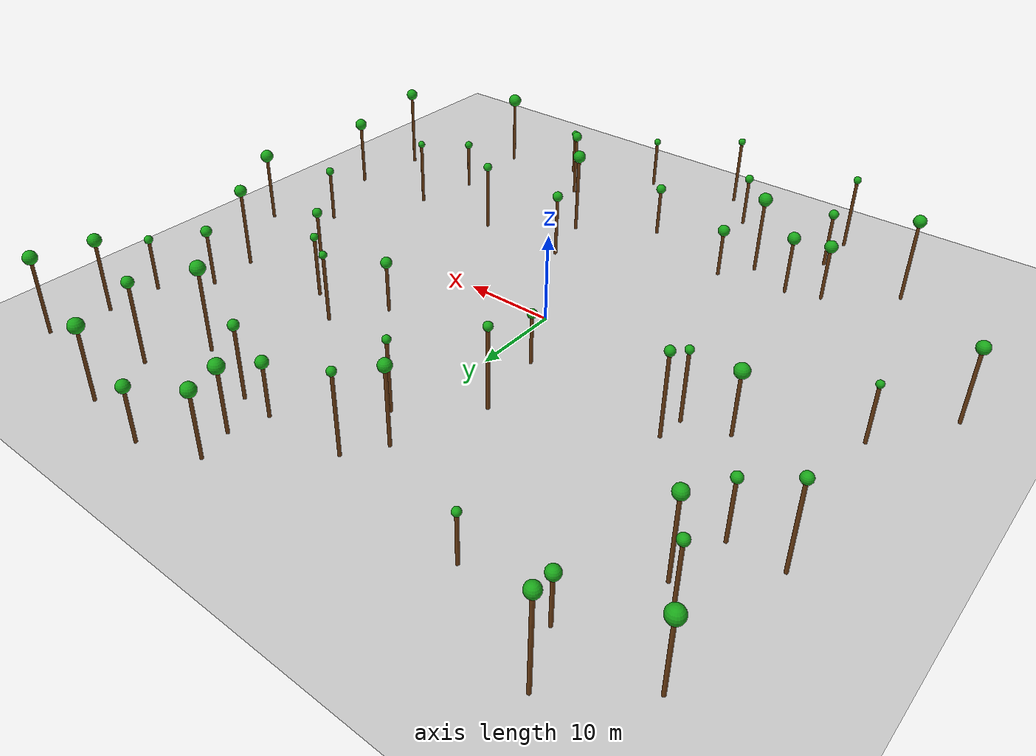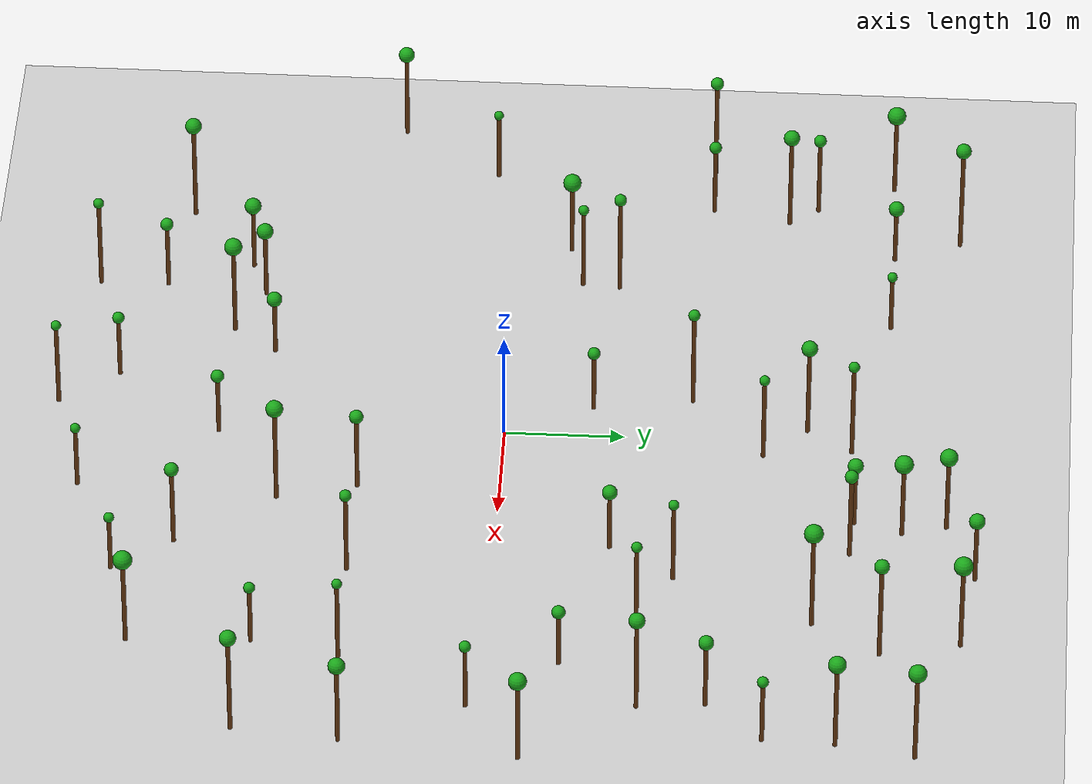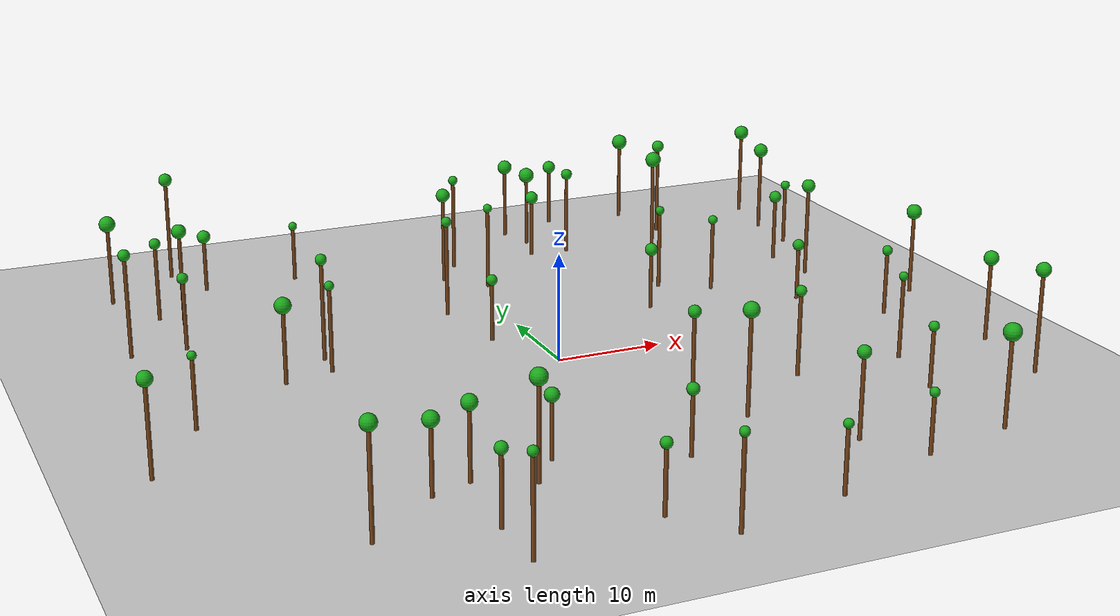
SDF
<sdf version="1.6">
 <world name="forest_world">
  <include><uri>model://sun</uri></include>
  <include><uri>model://ground_plane</uri></include>
  <model name="tree_0">
   <static>true</static>
   <link name="tree_link">
    <collision name="trunk_collision">
     <pose>-19.41 8.62 4.64 0 0 0</pose>
     <geometry><cylinder><radius>0.18</radius><length>9.27</length></cylinder></geometry>
    </collision>
    <visual name="trunk_visual">
     <pose>-19.41 8.62 4.64 0 0 0</pose>
     <geometry><cylinder><radius>0.18</radius><length>9.27</length></cylinder></geometry>
     <material><ambient>0.35 0.20 0.05 1</ambient><diffuse>0.45 0.25 0.08 1</diffuse></material>
    </visual>
    <visual name="leaf_visual">
     <pose>-19.41 8.62 9.53 0 0 0</pose>
     <geometry><sphere><radius>0.52</radius></sphere></geometry>
     <material><ambient>0.05 0.45 0.05 1</ambient><diffuse>0.10 0.65 0.10 1</diffuse></material>
    </visual>
   </link>
  </model>
  <model name="tree_1">
   <static>true</static>
   <link name="tree_link">
    <collision name="trunk_collision">
     <pose>-16.93 -21.17 3.21 0 0 0</pose>
     <geometry><cylinder><radius>0.18</radius><length>6.41</length></cylinder></geometry>
    </collision>
    <visual name="trunk_visual">
     <pose>-16.93 -21.17 3.21 0 0 0</pose>
     <geometry><cylinder><radius>0.18</radius><length>6.41</length></cylinder></geometry>
     <material><ambient>0.35 0.20 0.05 1</ambient><diffuse>0.45 0.25 0.08 1</diffuse></material>
    </visual>
    <visual name="leaf_visual">
     <pose>-16.93 -21.17 6.76 0 0 0</pose>
     <geometry><sphere><radius>0.69</radius></sphere></geometry>
     <material><ambient>0.05 0.45 0.05 1</ambient><diffuse>0.10 0.65 0.10 1</diffuse></material>
    </visual>
   </link>
  </model>
  <model name="tree_2">
   <static>true</static>
   <link name="tree_link">
    <collision name="trunk_collision">
     <pose>8.46 -34.79 2.87 0 0 0</pose>
     <geometry><cylinder><radius>0.18</radius><length>5.75</length></cylinder></geometry>
    </collision>
    <visual name="trunk_visual">
     <pose>8.46 -34.79 2.87 0 0 0</pose>
     <geometry><cylinder><radius>0.18</radius><length>5.75</length></cylinder></geometry>
     <material><ambient>0.35 0.20 0.05 1</ambient><diffuse>0.45 0.25 0.08 1</diffuse></material>
    </visual>
    <visual name="leaf_visual">
     <pose>8.46 -34.79 5.96 0 0 0</pose>
     <geometry><sphere><radius>0.42</radius></sphere></geometry>
     <material><ambient>0.05 0.45 0.05 1</ambient><diffuse>0.10 0.65 0.10 1</diffuse></material>
    </visual>
   </link>
  </model>
  <model name="tree_3">
   <static>true</static>
   <link name="tree_link">
    <collision name="trunk_collision">
     <pose>-5.80 -32.55 2.88 0 0 0</pose>
     <geometry><cylinder><radius>0.18</radius><length>5.76</length></cylinder></geometry>
    </collision>
    <visual name="trunk_visual">
     <pose>-5.80 -32.55 2.88 0 0 0</pose>
     <geometry><cylinder><radius>0.18</radius><length>5.76</length></cylinder></geometry>
     <material><ambient>0.35 0.20 0.05 1</ambient><diffuse>0.45 0.25 0.08 1</diffuse></material>
    </visual>
    <visual name="leaf_visual">
     <pose>-5.80 -32.55 6.01 0 0 0</pose>
     <geometry><sphere><radius>0.50</radius></sphere></geometry>
     <material><ambient>0.05 0.45 0.05 1</ambient><diffuse>0.10 0.65 0.10 1</diffuse></material>
    </visual>
   </link>
  </model>
  <model name="tree_4">
   <static>true</static>
   <link name="tree_link">
    <collision name="trunk_collision">
     <pose>27.48 -29.07 4.06 0 0 0</pose>
     <geometry><cylinder><radius>0.18</radius><length>8.13</length></cylinder></geometry>
    </collision>
    <visual name="trunk_visual">
     <pose>27.48 -29.07 4.06 0 0 0</pose>
     <geometry><cylinder><radius>0.18</radius><length>8.13</length></cylinder></geometry>
     <material><ambient>0.35 0.20 0.05 1</ambient><diffuse>0.45 0.25 0.08 1</diffuse></material>
    </visual>
    <visual name="leaf_visual">
     <pose>27.48 -29.07 8.52 0 0 0</pose>
     <geometry><sphere><radius>0.79</radius></sphere></geometry>
     <material><ambient>0.05 0.45 0.05 1</ambient><diffuse>0.10 0.65 0.10 1</diffuse></material>
    </visual>
   </link>
  </model>
  <model name="tree_5">
   <static>true</static>
   <link name="tree_link">
    <collision name="trunk_collision">
     <pose>-27.25 -28.04 4.60 0 0 0</pose>
     <geometry><cylinder><radius>0.18</radius><length>9.19</length></cylinder></geometry>
    </collision>
    <visual name="trunk_visual">
     <pose>-27.25 -28.04 4.60 0 0 0</pose>
     <geometry><cylinder><radius>0.18</radius><length>9.19</length></cylinder></geometry>
     <material><ambient>0.35 0.20 0.05 1</ambient><diffuse>0.45 0.25 0.08 1</diffuse></material>
    </visual>
    <visual name="leaf_visual">
     <pose>-27.25 -28.04 9.54 0 0 0</pose>
     <geometry><sphere><radius>0.69</radius></sphere></geometry>
     <material><ambient>0.05 0.45 0.05 1</ambient><diffuse>0.10 0.65 0.10 1</diffuse></material>
    </visual>
   </link>
  </model>
  <model name="tree_6">
   <static>true</static>
   <link name="tree_link">
    <collision name="trunk_collision">
     <pose>-24.26 4.32 3.45 0 0 0</pose>
     <geometry><cylinder><radius>0.18</radius><length>6.91</length></cylinder></geometry>
    </collision>
    <visual name="trunk_visual">
     <pose>-24.26 4.32 3.45 0 0 0</pose>
     <geometry><cylinder><radius>0.18</radius><length>6.91</length></cylinder></geometry>
     <material><ambient>0.35 0.20 0.05 1</ambient><diffuse>0.45 0.25 0.08 1</diffuse></material>
    </visual>
    <visual name="leaf_visual">
     <pose>-24.26 4.32 7.29 0 0 0</pose>
     <geometry><sphere><radius>0.76</radius></sphere></geometry>
     <material><ambient>0.05 0.45 0.05 1</ambient><diffuse>0.10 0.65 0.10 1</diffuse></material>
    </visual>
   </link>
  </model>
  <model name="tree_7">
   <static>true</static>
   <link name="tree_link">
    <collision name="trunk_collision">
     <pose>13.70 29.05 4.06 0 0 0</pose>
     <geometry><cylinder><radius>0.18</radius><length>8.11</length></cylinder></geometry>
    </collision>
    <visual name="trunk_visual">
     <pose>13.70 29.05 4.06 0 0 0</pose>
     <geometry><cylinder><radius>0.18</radius><length>8.11</length></cylinder></geometry>
     <material><ambient>0.35 0.20 0.05 1</ambient><diffuse>0.45 0.25 0.08 1</diffuse></material>
    </visual>
    <visual name="leaf_visual">
     <pose>13.70 29.05 8.39 0 0 0</pose>
     <geometry><sphere><radius>0.56</radius></sphere></geometry>
     <material><ambient>0.05 0.45 0.05 1</ambient><diffuse>0.10 0.65 0.10 1</diffuse></material>
    </visual>
   </link>
  </model>
  <model name="tree_8">
   <static>true</static>
   <link name="tree_link">
    <collision name="trunk_collision">
     <pose>28.53 -11.77 3.78 0 0 0</pose>
     <geometry><cylinder><radius>0.18</radius><length>7.57</length></cylinder></geometry>
    </collision>
    <visual name="trunk_visual">
     <pose>28.53 -11.77 3.78 0 0 0</pose>
     <geometry><cylinder><radius>0.18</radius><length>7.57</length></cylinder></geometry>
     <material><ambient>0.35 0.20 0.05 1</ambient><diffuse>0.45 0.25 0.08 1</diffuse></material>
    </visual>
    <visual name="leaf_visual">
     <pose>28.53 -11.77 7.78 0 0 0</pose>
     <geometry><sphere><radius>0.42</radius></sphere></geometry>
     <material><ambient>0.05 0.45 0.05 1</ambient><diffuse>0.10 0.65 0.10 1</diffuse></material>
    </visual>
   </link>
  </model>
  <model name="tree_9">
   <static>true</static>
   <link name="tree_link">
    <collision name="trunk_collision">
     <pose>-26.77 37.26 4.96 0 0 0</pose>
     <geometry><cylinder><radius>0.18</radius><length>9.92</length></cylinder></geometry>
    </collision>
    <visual name="trunk_visual">
     <pose>-26.77 37.26 4.96 0 0 0</pose>
     <geometry><cylinder><radius>0.18</radius><length>9.92</length></cylinder></geometry>
     <material><ambient>0.35 0.20 0.05 1</ambient><diffuse>0.45 0.25 0.08 1</diffuse></material>
    </visual>
    <visual name="leaf_visual">
     <pose>-26.77 37.26 10.24 0 0 0</pose>
     <geometry><sphere><radius>0.65</radius></sphere></geometry>
     <material><ambient>0.05 0.45 0.05 1</ambient><diffuse>0.10 0.65 0.10 1</diffuse></material>
    </visual>
   </link>
  </model>
  <model name="tree_10">
   <static>true</static>
   <link name="tree_link">
    <collision name="trunk_collision">
     <pose>-39.45 -10.74 4.07 0 0 0</pose>
     <geometry><cylinder><radius>0.18</radius><length>8.13</length></cylinder></geometry>
    </collision>
    <visual name="trunk_visual">
     <pose>-39.45 -10.74 4.07 0 0 0</pose>
     <geometry><cylinder><radius>0.18</radius><length>8.13</length></cylinder></geometry>
     <material><ambient>0.35 0.20 0.05 1</ambient><diffuse>0.45 0.25 0.08 1</diffuse></material>
    </visual>
    <visual name="leaf_visual">
     <pose>-39.45 -10.74 8.47 0 0 0</pose>
     <geometry><sphere><radius>0.67</radius></sphere></geometry>
     <material><ambient>0.05 0.45 0.05 1</ambient><diffuse>0.10 0.65 0.10 1</diffuse></material>
    </visual>
   </link>
  </model>
  <model name="tree_11">
   <static>true</static>
   <link name="tree_link">
    <collision name="trunk_collision">
     <pose>-35.35 16.10 4.75 0 0 0</pose>
     <geometry><cylinder><radius>0.18</radius><length>9.49</length></cylinder></geometry>
    </collision>
    <visual name="trunk_visual">
     <pose>-35.35 16.10 4.75 0 0 0</pose>
     <geometry><cylinder><radius>0.18</radius><length>9.49</length></cylinder></geometry>
     <material><ambient>0.35 0.20 0.05 1</ambient><diffuse>0.45 0.25 0.08 1</diffuse></material>
    </visual>
    <visual name="leaf_visual">
     <pose>-35.35 16.10 9.77 0 0 0</pose>
     <geometry><sphere><radius>0.55</radius></sphere></geometry>
     <material><ambient>0.05 0.45 0.05 1</ambient><diffuse>0.10 0.65 0.10 1</diffuse></material>
    </visual>
   </link>
  </model>
  <model name="tree_12">
   <static>true</static>
   <link name="tree_link">
    <collision name="trunk_collision">
     <pose>37.89 34.98 4.30 0 0 0</pose>
     <geometry><cylinder><radius>0.18</radius><length>8.60</length></cylinder></geometry>
    </collision>
    <visual name="trunk_visual">
     <pose>37.89 34.98 4.30 0 0 0</pose>
     <geometry><cylinder><radius>0.18</radius><length>8.60</length></cylinder></geometry>
     <material><ambient>0.35 0.20 0.05 1</ambient><diffuse>0.45 0.25 0.08 1</diffuse></material>
    </visual>
    <visual name="leaf_visual">
     <pose>37.89 34.98 8.98 0 0 0</pose>
     <geometry><sphere><radius>0.75</radius></sphere></geometry>
     <material><ambient>0.05 0.45 0.05 1</ambient><diffuse>0.10 0.65 0.10 1</diffuse></material>
    </visual>
   </link>
  </model>
  <model name="tree_13">
   <static>true</static>
   <link name="tree_link">
    <collision name="trunk_collision">
     <pose>9.81 29.31 2.95 0 0 0</pose>
     <geometry><cylinder><radius>0.18</radius><length>5.90</length></cylinder></geometry>
    </collision>
    <visual name="trunk_visual">
     <pose>9.81 29.31 2.95 0 0 0</pose>
     <geometry><cylinder><radius>0.18</radius><length>5.90</length></cylinder></geometry>
     <material><ambient>0.35 0.20 0.05 1</ambient><diffuse>0.45 0.25 0.08 1</diffuse></material>
    </visual>
    <visual name="leaf_visual">
     <pose>9.81 29.31 6.22 0 0 0</pose>
     <geometry><sphere><radius>0.65</radius></sphere></geometry>
     <material><ambient>0.05 0.45 0.05 1</ambient><diffuse>0.10 0.65 0.10 1</diffuse></material>
    </visual>
   </link>
  </model>
  <model name="tree_14">
   <static>true</static>
   <link name="tree_link">
    <collision name="trunk_collision">
     <pose>39.79 3.40 3.92 0 0 0</pose>
     <geometry><cylinder><radius>0.18</radius><length>7.84</length></cylinder></geometry>
    </collision>
    <visual name="trunk_visual">
     <pose>39.79 3.40 3.92 0 0 0</pose>
     <geometry><cylinder><radius>0.18</radius><length>7.84</length></cylinder></geometry>
     <material><ambient>0.35 0.20 0.05 1</ambient><diffuse>0.45 0.25 0.08 1</diffuse></material>
    </visual>
    <visual name="leaf_visual">
     <pose>39.79 3.40 8.22 0 0 0</pose>
     <geometry><sphere><radius>0.74</radius></sphere></geometry>
     <material><ambient>0.05 0.45 0.05 1</ambient><diffuse>0.10 0.65 0.10 1</diffuse></material>
    </visual>
   </link>
  </model>
  <model name="tree_15">
   <static>true</static>
   <link name="tree_link">
    <collision name="trunk_collision">
     <pose>33.84 -1.15 3.05 0 0 0</pose>
     <geometry><cylinder><radius>0.18</radius><length>6.11</length></cylinder></geometry>
    </collision>
    <visual name="trunk_visual">
     <pose>33.84 -1.15 3.05 0 0 0</pose>
     <geometry><cylinder><radius>0.18</radius><length>6.11</length></cylinder></geometry>
     <material><ambient>0.35 0.20 0.05 1</ambient><diffuse>0.45 0.25 0.08 1</diffuse></material>
    </visual>
    <visual name="leaf_visual">
     <pose>33.84 -1.15 6.35 0 0 0</pose>
     <geometry><sphere><radius>0.48</radius></sphere></geometry>
     <material><ambient>0.05 0.45 0.05 1</ambient><diffuse>0.10 0.65 0.10 1</diffuse></material>
    </visual>
   </link>
  </model>
  <model name="tree_16">
   <static>true</static>
   <link name="tree_link">
    <collision name="trunk_collision">
     <pose>16.18 39.34 2.98 0 0 0</pose>
     <geometry><cylinder><radius>0.18</radius><length>5.95</length></cylinder></geometry>
    </collision>
    <visual name="trunk_visual">
     <pose>16.18 39.34 2.98 0 0 0</pose>
     <geometry><cylinder><radius>0.18</radius><length>5.95</length></cylinder></geometry>
     <material><ambient>0.35 0.20 0.05 1</ambient><diffuse>0.45 0.25 0.08 1</diffuse></material>
    </visual>
    <visual name="leaf_visual">
     <pose>16.18 39.34 6.28 0 0 0</pose>
     <geometry><sphere><radius>0.66</radius></sphere></geometry>
     <material><ambient>0.05 0.45 0.05 1</ambient><diffuse>0.10 0.65 0.10 1</diffuse></material>
    </visual>
   </link>
  </model>
  <model name="tree_17">
   <static>true</static>
   <link name="tree_link">
    <collision name="trunk_collision">
     <pose>0.88 28.86 4.50 0 0 0</pose>
     <geometry><cylinder><radius>0.18</radius><length>9.00</length></cylinder></geometry>
    </collision>
    <visual name="trunk_visual">
     <pose>0.88 28.86 4.50 0 0 0</pose>
     <geometry><cylinder><radius>0.18</radius><length>9.00</length></cylinder></geometry>
     <material><ambient>0.35 0.20 0.05 1</ambient><diffuse>0.45 0.25 0.08 1</diffuse></material>
    </visual>
    <visual name="leaf_visual">
     <pose>0.88 28.86 9.23 0 0 0</pose>
     <geometry><sphere><radius>0.46</radius></sphere></geometry>
     <material><ambient>0.05 0.45 0.05 1</ambient><diffuse>0.10 0.65 0.10 1</diffuse></material>
    </visual>
   </link>
  </model>
  <model name="tree_18">
   <static>true</static>
   <link name="tree_link">
    <collision name="trunk_collision">
     <pose>38.51 -11.05 3.80 0 0 0</pose>
     <geometry><cylinder><radius>0.18</radius><length>7.59</length></cylinder></geometry>
    </collision>
    <visual name="trunk_visual">
     <pose>38.51 -11.05 3.80 0 0 0</pose>
     <geometry><cylinder><radius>0.18</radius><length>7.59</length></cylinder></geometry>
     <material><ambient>0.35 0.20 0.05 1</ambient><diffuse>0.45 0.25 0.08 1</diffuse></material>
    </visual>
    <visual name="leaf_visual">
     <pose>38.51 -11.05 7.94 0 0 0</pose>
     <geometry><sphere><radius>0.70</radius></sphere></geometry>
     <material><ambient>0.05 0.45 0.05 1</ambient><diffuse>0.10 0.65 0.10 1</diffuse></material>
    </visual>
   </link>
  </model>
  <model name="tree_19">
   <static>true</static>
   <link name="tree_link">
    <collision name="trunk_collision">
     <pose>-20.57 -22.48 3.07 0 0 0</pose>
     <geometry><cylinder><radius>0.18</radius><length>6.14</length></cylinder></geometry>
    </collision>
    <visual name="trunk_visual">
     <pose>-20.57 -22.48 3.07 0 0 0</pose>
     <geometry><cylinder><radius>0.18</radius><length>6.14</length></cylinder></geometry>
     <material><ambient>0.35 0.20 0.05 1</ambient><diffuse>0.45 0.25 0.08 1</diffuse></material>
    </visual>
    <visual name="leaf_visual">
     <pose>-20.57 -22.48 6.49 0 0 0</pose>
     <geometry><sphere><radius>0.70</radius></sphere></geometry>
     <material><ambient>0.05 0.45 0.05 1</ambient><diffuse>0.10 0.65 0.10 1</diffuse></material>
    </visual>
   </link>
  </model>
  <model name="tree_20">
   <static>true</static>
   <link name="tree_link">
    <collision name="trunk_collision">
     <pose>-4.93 15.45 4.53 0 0 0</pose>
     <geometry><cylinder><radius>0.18</radius><length>9.05</length></cylinder></geometry>
    </collision>
    <visual name="trunk_visual">
     <pose>-4.93 15.45 4.53 0 0 0</pose>
     <geometry><cylinder><radius>0.18</radius><length>9.05</length></cylinder></geometry>
     <material><ambient>0.35 0.20 0.05 1</ambient><diffuse>0.45 0.25 0.08 1</diffuse></material>
    </visual>
    <visual name="leaf_visual">
     <pose>-4.93 15.45 9.30 0 0 0</pose>
     <geometry><sphere><radius>0.49</radius></sphere></geometry>
     <material><ambient>0.05 0.45 0.05 1</ambient><diffuse>0.10 0.65 0.10 1</diffuse></material>
    </visual>
   </link>
  </model>
  <model name="tree_21">
   <static>true</static>
   <link name="tree_link">
    <collision name="trunk_collision">
     <pose>-15.39 31.66 2.68 0 0 0</pose>
     <geometry><cylinder><radius>0.18</radius><length>5.36</length></cylinder></geometry>
    </collision>
    <visual name="trunk_visual">
     <pose>-15.39 31.66 2.68 0 0 0</pose>
     <geometry><cylinder><radius>0.18</radius><length>5.36</length></cylinder></geometry>
     <material><ambient>0.35 0.20 0.05 1</ambient><diffuse>0.45 0.25 0.08 1</diffuse></material>
    </visual>
    <visual name="leaf_visual">
     <pose>-15.39 31.66 5.57 0 0 0</pose>
     <geometry><sphere><radius>0.42</radius></sphere></geometry>
     <material><ambient>0.05 0.45 0.05 1</ambient><diffuse>0.10 0.65 0.10 1</diffuse></material>
    </visual>
   </link>
  </model>
  <model name="tree_22">
   <static>true</static>
   <link name="tree_link">
    <collision name="trunk_collision">
     <pose>36.79 28.59 4.12 0 0 0</pose>
     <geometry><cylinder><radius>0.18</radius><length>8.23</length></cylinder></geometry>
    </collision>
    <visual name="trunk_visual">
     <pose>36.79 28.59 4.12 0 0 0</pose>
     <geometry><cylinder><radius>0.18</radius><length>8.23</length></cylinder></geometry>
     <material><ambient>0.35 0.20 0.05 1</ambient><diffuse>0.45 0.25 0.08 1</diffuse></material>
    </visual>
    <visual name="leaf_visual">
     <pose>36.79 28.59 8.59 0 0 0</pose>
     <geometry><sphere><radius>0.73</radius></sphere></geometry>
     <material><ambient>0.05 0.45 0.05 1</ambient><diffuse>0.10 0.65 0.10 1</diffuse></material>
    </visual>
   </link>
  </model>
  <model name="tree_23">
   <static>true</static>
   <link name="tree_link">
    <collision name="trunk_collision">
     <pose>-3.61 7.23 2.82 0 0 0</pose>
     <geometry><cylinder><radius>0.18</radius><length>5.63</length></cylinder></geometry>
    </collision>
    <visual name="trunk_visual">
     <pose>-3.61 7.23 2.82 0 0 0</pose>
     <geometry><cylinder><radius>0.18</radius><length>5.63</length></cylinder></geometry>
     <material><ambient>0.35 0.20 0.05 1</ambient><diffuse>0.45 0.25 0.08 1</diffuse></material>
    </visual>
    <visual name="leaf_visual">
     <pose>-3.61 7.23 5.89 0 0 0</pose>
     <geometry><sphere><radius>0.52</radius></sphere></geometry>
     <material><ambient>0.05 0.45 0.05 1</ambient><diffuse>0.10 0.65 0.10 1</diffuse></material>
    </visual>
   </link>
  </model>
  <model name="tree_24">
   <static>true</static>
   <link name="tree_link">
    <collision name="trunk_collision">
     <pose>-19.68 5.52 3.93 0 0 0</pose>
     <geometry><cylinder><radius>0.18</radius><length>7.86</length></cylinder></geometry>
    </collision>
    <visual name="trunk_visual">
     <pose>-19.68 5.52 3.93 0 0 0</pose>
     <geometry><cylinder><radius>0.18</radius><length>7.86</length></cylinder></geometry>
     <material><ambient>0.35 0.20 0.05 1</ambient><diffuse>0.45 0.25 0.08 1</diffuse></material>
    </visual>
    <visual name="leaf_visual">
     <pose>-19.68 5.52 8.08 0 0 0</pose>
     <geometry><sphere><radius>0.44</radius></sphere></geometry>
     <material><ambient>0.05 0.45 0.05 1</ambient><diffuse>0.10 0.65 0.10 1</diffuse></material>
    </visual>
   </link>
  </model>
  <model name="tree_25">
   <static>true</static>
   <link name="tree_link">
    <collision name="trunk_collision">
     <pose>7.45 -11.72 3.59 0 0 0</pose>
     <geometry><cylinder><radius>0.18</radius><length>7.17</length></cylinder></geometry>
    </collision>
    <visual name="trunk_visual">
     <pose>7.45 -11.72 3.59 0 0 0</pose>
     <geometry><cylinder><radius>0.18</radius><length>7.17</length></cylinder></geometry>
     <material><ambient>0.35 0.20 0.05 1</ambient><diffuse>0.45 0.25 0.08 1</diffuse></material>
    </visual>
    <visual name="leaf_visual">
     <pose>7.45 -11.72 7.46 0 0 0</pose>
     <geometry><sphere><radius>0.58</radius></sphere></geometry>
     <material><ambient>0.05 0.45 0.05 1</ambient><diffuse>0.10 0.65 0.10 1</diffuse></material>
    </visual>
   </link>
  </model>
  <model name="tree_26">
   <static>true</static>
   <link name="tree_link">
    <collision name="trunk_collision">
     <pose>22.42 26.23 4.66 0 0 0</pose>
     <geometry><cylinder><radius>0.18</radius><length>9.32</length></cylinder></geometry>
    </collision>
    <visual name="trunk_visual">
     <pose>22.42 26.23 4.66 0 0 0</pose>
     <geometry><cylinder><radius>0.18</radius><length>9.32</length></cylinder></geometry>
     <material><ambient>0.35 0.20 0.05 1</ambient><diffuse>0.45 0.25 0.08 1</diffuse></material>
    </visual>
    <visual name="leaf_visual">
     <pose>22.42 26.23 9.72 0 0 0</pose>
     <geometry><sphere><radius>0.79</radius></sphere></geometry>
     <material><ambient>0.05 0.45 0.05 1</ambient><diffuse>0.10 0.65 0.10 1</diffuse></material>
    </visual>
   </link>
  </model>
  <model name="tree_27">
   <static>true</static>
   <link name="tree_link">
    <collision name="trunk_collision">
     <pose>10.89 33.26 3.55 0 0 0</pose>
     <geometry><cylinder><radius>0.18</radius><length>7.11</length></cylinder></geometry>
    </collision>
    <visual name="trunk_visual">
     <pose>10.89 33.26 3.55 0 0 0</pose>
     <geometry><cylinder><radius>0.18</radius><length>7.11</length></cylinder></geometry>
     <material><ambient>0.35 0.20 0.05 1</ambient><diffuse>0.45 0.25 0.08 1</diffuse></material>
    </visual>
    <visual name="leaf_visual">
     <pose>10.89 33.26 7.50 0 0 0</pose>
     <geometry><sphere><radius>0.78</radius></sphere></geometry>
     <material><ambient>0.05 0.45 0.05 1</ambient><diffuse>0.10 0.65 0.10 1</diffuse></material>
    </visual>
   </link>
  </model>
  <model name="tree_28">
   <static>true</static>
   <link name="tree_link">
    <collision name="trunk_collision">
     <pose>1.74 21.55 3.98 0 0 0</pose>
     <geometry><cylinder><radius>0.18</radius><length>7.95</length></cylinder></geometry>
    </collision>
    <visual name="trunk_visual">
     <pose>1.74 21.55 3.98 0 0 0</pose>
     <geometry><cylinder><radius>0.18</radius><length>7.95</length></cylinder></geometry>
     <material><ambient>0.35 0.20 0.05 1</ambient><diffuse>0.45 0.25 0.08 1</diffuse></material>
    </visual>
    <visual name="leaf_visual">
     <pose>1.74 21.55 8.17 0 0 0</pose>
     <geometry><sphere><radius>0.43</radius></sphere></geometry>
     <material><ambient>0.05 0.45 0.05 1</ambient><diffuse>0.10 0.65 0.10 1</diffuse></material>
    </visual>
   </link>
  </model>
  <model name="tree_29">
   <static>true</static>
   <link name="tree_link">
    <collision name="trunk_collision">
     <pose>-33.89 31.49 3.86 0 0 0</pose>
     <geometry><cylinder><radius>0.18</radius><length>7.73</length></cylinder></geometry>
    </collision>
    <visual name="trunk_visual">
     <pose>-33.89 31.49 3.86 0 0 0</pose>
     <geometry><cylinder><radius>0.18</radius><length>7.73</length></cylinder></geometry>
     <material><ambient>0.35 0.20 0.05 1</ambient><diffuse>0.45 0.25 0.08 1</diffuse></material>
    </visual>
    <visual name="leaf_visual">
     <pose>-33.89 31.49 8.12 0 0 0</pose>
     <geometry><sphere><radius>0.78</radius></sphere></geometry>
     <material><ambient>0.05 0.45 0.05 1</ambient><diffuse>0.10 0.65 0.10 1</diffuse></material>
    </visual>
   </link>
  </model>
  <model name="tree_30">
   <static>true</static>
   <link name="tree_link">
    <collision name="trunk_collision">
     <pose>27.01 -18.96 2.71 0 0 0</pose>
     <geometry><cylinder><radius>0.18</radius><length>5.43</length></cylinder></geometry>
    </collision>
    <visual name="trunk_visual">
     <pose>27.01 -18.96 2.71 0 0 0</pose>
     <geometry><cylinder><radius>0.18</radius><length>5.43</length></cylinder></geometry>
     <material><ambient>0.35 0.20 0.05 1</ambient><diffuse>0.45 0.25 0.08 1</diffuse></material>
    </visual>
    <visual name="leaf_visual">
     <pose>27.01 -18.96 5.67 0 0 0</pose>
     <geometry><sphere><radius>0.47</radius></sphere></geometry>
     <material><ambient>0.05 0.45 0.05 1</ambient><diffuse>0.10 0.65 0.10 1</diffuse></material>
    </visual>
   </link>
  </model>
  <model name="tree_31">
   <static>true</static>
   <link name="tree_link">
    <collision name="trunk_collision">
     <pose>36.55 22.73 3.00 0 0 0</pose>
     <geometry><cylinder><radius>0.18</radius><length>6.00</length></cylinder></geometry>
    </collision>
    <visual name="trunk_visual">
     <pose>36.55 22.73 3.00 0 0 0</pose>
     <geometry><cylinder><radius>0.18</radius><length>6.00</length></cylinder></geometry>
     <material><ambient>0.35 0.20 0.05 1</ambient><diffuse>0.45 0.25 0.08 1</diffuse></material>
    </visual>
    <visual name="leaf_visual">
     <pose>36.55 22.73 6.23 0 0 0</pose>
     <geometry><sphere><radius>0.47</radius></sphere></geometry>
     <material><ambient>0.05 0.45 0.05 1</ambient><diffuse>0.10 0.65 0.10 1</diffuse></material>
    </visual>
   </link>
  </model>
  <model name="tree_32">
   <static>true</static>
   <link name="tree_link">
    <collision name="trunk_collision">
     <pose>32.60 18.05 3.17 0 0 0</pose>
     <geometry><cylinder><radius>0.18</radius><length>6.34</length></cylinder></geometry>
    </collision>
    <visual name="trunk_visual">
     <pose>32.60 18.05 3.17 0 0 0</pose>
     <geometry><cylinder><radius>0.18</radius><length>6.34</length></cylinder></geometry>
     <material><ambient>0.35 0.20 0.05 1</ambient><diffuse>0.45 0.25 0.08 1</diffuse></material>
    </visual>
    <visual name="leaf_visual">
     <pose>32.60 18.05 6.65 0 0 0</pose>
     <geometry><sphere><radius>0.61</radius></sphere></geometry>
     <material><ambient>0.05 0.45 0.05 1</ambient><diffuse>0.10 0.65 0.10 1</diffuse></material>
    </visual>
   </link>
  </model>
  <model name="tree_33">
   <static>true</static>
   <link name="tree_link">
    <collision name="trunk_collision">
     <pose>17.87 -11.85 3.83 0 0 0</pose>
     <geometry><cylinder><radius>0.18</radius><length>7.66</length></cylinder></geometry>
    </collision>
    <visual name="trunk_visual">
     <pose>17.87 -11.85 3.83 0 0 0</pose>
     <geometry><cylinder><radius>0.18</radius><length>7.66</length></cylinder></geometry>
     <material><ambient>0.35 0.20 0.05 1</ambient><diffuse>0.45 0.25 0.08 1</diffuse></material>
    </visual>
    <visual name="leaf_visual">
     <pose>17.87 -11.85 7.91 0 0 0</pose>
     <geometry><sphere><radius>0.50</radius></sphere></geometry>
     <material><ambient>0.05 0.45 0.05 1</ambient><diffuse>0.10 0.65 0.10 1</diffuse></material>
    </visual>
   </link>
  </model>
  <model name="tree_34">
   <static>true</static>
   <link name="tree_link">
    <collision name="trunk_collision">
     <pose>-24.49 31.77 2.62 0 0 0</pose>
     <geometry><cylinder><radius>0.18</radius><length>5.24</length></cylinder></geometry>
    </collision>
    <visual name="trunk_visual">
     <pose>-24.49 31.77 2.62 0 0 0</pose>
     <geometry><cylinder><radius>0.18</radius><length>5.24</length></cylinder></geometry>
     <material><ambient>0.35 0.20 0.05 1</ambient><diffuse>0.45 0.25 0.08 1</diffuse></material>
    </visual>
    <visual name="leaf_visual">
     <pose>-24.49 31.77 5.57 0 0 0</pose>
     <geometry><sphere><radius>0.65</radius></sphere></geometry>
     <material><ambient>0.05 0.45 0.05 1</ambient><diffuse>0.10 0.65 0.10 1</diffuse></material>
    </visual>
   </link>
  </model>
  <model name="tree_35">
   <static>true</static>
   <link name="tree_link">
    <collision name="trunk_collision">
     <pose>28.33 6.03 2.61 0 0 0</pose>
     <geometry><cylinder><radius>0.18</radius><length>5.22</length></cylinder></geometry>
    </collision>
    <visual name="trunk_visual">
     <pose>28.33 6.03 2.61 0 0 0</pose>
     <geometry><cylinder><radius>0.18</radius><length>5.22</length></cylinder></geometry>
     <material><ambient>0.35 0.20 0.05 1</ambient><diffuse>0.45 0.25 0.08 1</diffuse></material>
    </visual>
    <visual name="leaf_visual">
     <pose>28.33 6.03 5.50 0 0 0</pose>
     <geometry><sphere><radius>0.56</radius></sphere></geometry>
     <material><ambient>0.05 0.45 0.05 1</ambient><diffuse>0.10 0.65 0.10 1</diffuse></material>
    </visual>
   </link>
  </model>
  <model name="tree_36">
   <static>true</static>
   <link name="tree_link">
    <collision name="trunk_collision">
     <pose>1.06 -23.70 2.79 0 0 0</pose>
     <geometry><cylinder><radius>0.18</radius><length>5.59</length></cylinder></geometry>
    </collision>
    <visual name="trunk_visual">
     <pose>1.06 -23.70 2.79 0 0 0</pose>
     <geometry><cylinder><radius>0.18</radius><length>5.59</length></cylinder></geometry>
     <material><ambient>0.35 0.20 0.05 1</ambient><diffuse>0.45 0.25 0.08 1</diffuse></material>
    </visual>
    <visual name="leaf_visual">
     <pose>1.06 -23.70 5.86 0 0 0</pose>
     <geometry><sphere><radius>0.55</radius></sphere></geometry>
     <material><ambient>0.05 0.45 0.05 1</ambient><diffuse>0.10 0.65 0.10 1</diffuse></material>
    </visual>
   </link>
  </model>
  <model name="tree_37">
   <static>true</static>
   <link name="tree_link">
    <collision name="trunk_collision">
     <pose>-30.23 16.21 3.31 0 0 0</pose>
     <geometry><cylinder><radius>0.18</radius><length>6.62</length></cylinder></geometry>
    </collision>
    <visual name="trunk_visual">
     <pose>-30.23 16.21 3.31 0 0 0</pose>
     <geometry><cylinder><radius>0.18</radius><length>6.62</length></cylinder></geometry>
     <material><ambient>0.35 0.20 0.05 1</ambient><diffuse>0.45 0.25 0.08 1</diffuse></material>
    </visual>
    <visual name="leaf_visual">
     <pose>-30.23 16.21 6.88 0 0 0</pose>
     <geometry><sphere><radius>0.52</radius></sphere></geometry>
     <material><ambient>0.05 0.45 0.05 1</ambient><diffuse>0.10 0.65 0.10 1</diffuse></material>
    </visual>
   </link>
  </model>
  <model name="tree_38">
   <static>true</static>
   <link name="tree_link">
    <collision name="trunk_collision">
     <pose>-12.10 -23.41 4.27 0 0 0</pose>
     <geometry><cylinder><radius>0.18</radius><length>8.53</length></cylinder></geometry>
    </collision>
    <visual name="trunk_visual">
     <pose>-12.10 -23.41 4.27 0 0 0</pose>
     <geometry><cylinder><radius>0.18</radius><length>8.53</length></cylinder></geometry>
     <material><ambient>0.35 0.20 0.05 1</ambient><diffuse>0.45 0.25 0.08 1</diffuse></material>
    </visual>
    <visual name="leaf_visual">
     <pose>-12.10 -23.41 8.91 0 0 0</pose>
     <geometry><sphere><radius>0.75</radius></sphere></geometry>
     <material><ambient>0.05 0.45 0.05 1</ambient><diffuse>0.10 0.65 0.10 1</diffuse></material>
    </visual>
   </link>
  </model>
  <model name="tree_39">
   <static>true</static>
   <link name="tree_link">
    <collision name="trunk_collision">
     <pose>9.24 -18.27 4.57 0 0 0</pose>
     <geometry><cylinder><radius>0.18</radius><length>9.15</length></cylinder></geometry>
    </collision>
    <visual name="trunk_visual">
     <pose>9.24 -18.27 4.57 0 0 0</pose>
     <geometry><cylinder><radius>0.18</radius><length>9.15</length></cylinder></geometry>
     <material><ambient>0.35 0.20 0.05 1</ambient><diffuse>0.45 0.25 0.08 1</diffuse></material>
    </visual>
    <visual name="leaf_visual">
     <pose>9.24 -18.27 9.51 0 0 0</pose>
     <geometry><sphere><radius>0.72</radius></sphere></geometry>
     <material><ambient>0.05 0.45 0.05 1</ambient><diffuse>0.10 0.65 0.10 1</diffuse></material>
    </visual>
   </link>
  </model>
  <model name="tree_40">
   <static>true</static>
   <link name="tree_link">
    <collision name="trunk_collision">
     <pose>25.79 31.81 4.57 0 0 0</pose>
     <geometry><cylinder><radius>0.18</radius><length>9.13</length></cylinder></geometry>
    </collision>
    <visual name="trunk_visual">
     <pose>25.79 31.81 4.57 0 0 0</pose>
     <geometry><cylinder><radius>0.18</radius><length>9.13</length></cylinder></geometry>
     <material><ambient>0.35 0.20 0.05 1</ambient><diffuse>0.45 0.25 0.08 1</diffuse></material>
    </visual>
    <visual name="leaf_visual">
     <pose>25.79 31.81 9.44 0 0 0</pose>
     <geometry><sphere><radius>0.62</radius></sphere></geometry>
     <material><ambient>0.05 0.45 0.05 1</ambient><diffuse>0.10 0.65 0.10 1</diffuse></material>
    </visual>
   </link>
  </model>
  <model name="tree_41">
   <static>true</static>
   <link name="tree_link">
    <collision name="trunk_collision">
     <pose>15.19 -26.24 3.70 0 0 0</pose>
     <geometry><cylinder><radius>0.18</radius><length>7.39</length></cylinder></geometry>
    </collision>
    <visual name="trunk_visual">
     <pose>15.19 -26.24 3.70 0 0 0</pose>
     <geometry><cylinder><radius>0.18</radius><length>7.39</length></cylinder></geometry>
     <material><ambient>0.35 0.20 0.05 1</ambient><diffuse>0.45 0.25 0.08 1</diffuse></material>
    </visual>
    <visual name="leaf_visual">
     <pose>15.19 -26.24 7.69 0 0 0</pose>
     <geometry><sphere><radius>0.59</radius></sphere></geometry>
     <material><ambient>0.05 0.45 0.05 1</ambient><diffuse>0.10 0.65 0.10 1</diffuse></material>
    </visual>
   </link>
  </model>
  <model name="tree_42">
   <static>true</static>
   <link name="tree_link">
    <collision name="trunk_collision">
     <pose>-17.64 -35.24 4.17 0 0 0</pose>
     <geometry><cylinder><radius>0.18</radius><length>8.33</length></cylinder></geometry>
    </collision>
    <visual name="trunk_visual">
     <pose>-17.64 -35.24 4.17 0 0 0</pose>
     <geometry><cylinder><radius>0.18</radius><length>8.33</length></cylinder></geometry>
     <material><ambient>0.35 0.20 0.05 1</ambient><diffuse>0.45 0.25 0.08 1</diffuse></material>
    </visual>
    <visual name="leaf_visual">
     <pose>-17.64 -35.24 8.55 0 0 0</pose>
     <geometry><sphere><radius>0.44</radius></sphere></geometry>
     <material><ambient>0.05 0.45 0.05 1</ambient><diffuse>0.10 0.65 0.10 1</diffuse></material>
    </visual>
   </link>
  </model>
  <model name="tree_43">
   <static>true</static>
   <link name="tree_link">
    <collision name="trunk_collision">
     <pose>-28.89 22.69 4.48 0 0 0</pose>
     <geometry><cylinder><radius>0.18</radius><length>8.95</length></cylinder></geometry>
    </collision>
    <visual name="trunk_visual">
     <pose>-28.89 22.69 4.48 0 0 0</pose>
     <geometry><cylinder><radius>0.18</radius><length>8.95</length></cylinder></geometry>
     <material><ambient>0.35 0.20 0.05 1</ambient><diffuse>0.45 0.25 0.08 1</diffuse></material>
    </visual>
    <visual name="leaf_visual">
     <pose>-28.89 22.69 9.29 0 0 0</pose>
     <geometry><sphere><radius>0.68</radius></sphere></geometry>
     <material><ambient>0.05 0.45 0.05 1</ambient><diffuse>0.10 0.65 0.10 1</diffuse></material>
    </visual>
   </link>
  </model>
  <model name="tree_44">
   <static>true</static>
   <link name="tree_link">
    <collision name="trunk_collision">
     <pose>-17.72 -29.53 3.11 0 0 0</pose>
     <geometry><cylinder><radius>0.18</radius><length>6.22</length></cylinder></geometry>
    </collision>
    <visual name="trunk_visual">
     <pose>-17.72 -29.53 3.11 0 0 0</pose>
     <geometry><cylinder><radius>0.18</radius><length>6.22</length></cylinder></geometry>
     <material><ambient>0.35 0.20 0.05 1</ambient><diffuse>0.45 0.25 0.08 1</diffuse></material>
    </visual>
    <visual name="leaf_visual">
     <pose>-17.72 -29.53 6.49 0 0 0</pose>
     <geometry><sphere><radius>0.54</radius></sphere></geometry>
     <material><ambient>0.05 0.45 0.05 1</ambient><diffuse>0.10 0.65 0.10 1</diffuse></material>
    </visual>
   </link>
  </model>
  <model name="tree_45">
   <static>true</static>
   <link name="tree_link">
    <collision name="trunk_collision">
     <pose>-1.64 25.12 4.30 0 0 0</pose>
     <geometry><cylinder><radius>0.18</radius><length>8.59</length></cylinder></geometry>
    </collision>
    <visual name="trunk_visual">
     <pose>-1.64 25.12 4.30 0 0 0</pose>
     <geometry><cylinder><radius>0.18</radius><length>8.59</length></cylinder></geometry>
     <material><ambient>0.35 0.20 0.05 1</ambient><diffuse>0.45 0.25 0.08 1</diffuse></material>
    </visual>
    <visual name="leaf_visual">
     <pose>-1.64 25.12 8.93 0 0 0</pose>
     <geometry><sphere><radius>0.68</radius></sphere></geometry>
     <material><ambient>0.05 0.45 0.05 1</ambient><diffuse>0.10 0.65 0.10 1</diffuse></material>
    </visual>
   </link>
  </model>
  <model name="tree_46">
   <static>true</static>
   <link name="tree_link">
    <collision name="trunk_collision">
     <pose>-33.92 -2.48 3.19 0 0 0</pose>
     <geometry><cylinder><radius>0.18</radius><length>6.39</length></cylinder></geometry>
    </collision>
    <visual name="trunk_visual">
     <pose>-33.92 -2.48 3.19 0 0 0</pose>
     <geometry><cylinder><radius>0.18</radius><length>6.39</length></cylinder></geometry>
     <material><ambient>0.35 0.20 0.05 1</ambient><diffuse>0.45 0.25 0.08 1</diffuse></material>
    </visual>
    <visual name="leaf_visual">
     <pose>-33.92 -2.48 6.59 0 0 0</pose>
     <geometry><sphere><radius>0.40</radius></sphere></geometry>
     <material><ambient>0.05 0.45 0.05 1</ambient><diffuse>0.10 0.65 0.10 1</diffuse></material>
    </visual>
   </link>
  </model>
  <model name="tree_47">
   <static>true</static>
   <link name="tree_link">
    <collision name="trunk_collision">
     <pose>18.80 -31.07 2.60 0 0 0</pose>
     <geometry><cylinder><radius>0.18</radius><length>5.20</length></cylinder></geometry>
    </collision>
    <visual name="trunk_visual">
     <pose>18.80 -31.07 2.60 0 0 0</pose>
     <geometry><cylinder><radius>0.18</radius><length>5.20</length></cylinder></geometry>
     <material><ambient>0.35 0.20 0.05 1</ambient><diffuse>0.45 0.25 0.08 1</diffuse></material>
    </visual>
    <visual name="leaf_visual">
     <pose>18.80 -31.07 5.42 0 0 0</pose>
     <geometry><sphere><radius>0.43</radius></sphere></geometry>
     <material><ambient>0.05 0.45 0.05 1</ambient><diffuse>0.10 0.65 0.10 1</diffuse></material>
    </visual>
   </link>
  </model>
  <model name="tree_48">
   <static>true</static>
   <link name="tree_link">
    <collision name="trunk_collision">
     <pose>-9.43 -19.81 2.65 0 0 0</pose>
     <geometry><cylinder><radius>0.18</radius><length>5.30</length></cylinder></geometry>
    </collision>
    <visual name="trunk_visual">
     <pose>-9.43 -19.81 2.65 0 0 0</pose>
     <geometry><cylinder><radius>0.18</radius><length>5.30</length></cylinder></geometry>
     <material><ambient>0.35 0.20 0.05 1</ambient><diffuse>0.45 0.25 0.08 1</diffuse></material>
    </visual>
    <visual name="leaf_visual">
     <pose>-9.43 -19.81 5.62 0 0 0</pose>
     <geometry><sphere><radius>0.64</radius></sphere></geometry>
     <material><ambient>0.05 0.45 0.05 1</ambient><diffuse>0.10 0.65 0.10 1</diffuse></material>
    </visual>
   </link>
  </model>
  <model name="tree_49">
   <static>true</static>
   <link name="tree_link">
    <collision name="trunk_collision">
     <pose>17.48 14.78 3.85 0 0 0</pose>
     <geometry><cylinder><radius>0.18</radius><length>7.69</length></cylinder></geometry>
    </collision>
    <visual name="trunk_visual">
     <pose>17.48 14.78 3.85 0 0 0</pose>
     <geometry><cylinder><radius>0.18</radius><length>7.69</length></cylinder></geometry>
     <material><ambient>0.35 0.20 0.05 1</ambient><diffuse>0.45 0.25 0.08 1</diffuse></material>
    </visual>
    <visual name="leaf_visual">
     <pose>17.48 14.78 7.91 0 0 0</pose>
     <geometry><sphere><radius>0.43</radius></sphere></geometry>
     <material><ambient>0.05 0.45 0.05 1</ambient><diffuse>0.10 0.65 0.10 1</diffuse></material>
    </visual>
   </link>
  </model>
  <model name="tree_50">
   <static>true</static>
   <link name="tree_link">
    <collision name="trunk_collision">
     <pose>-30.73 25.08 3.68 0 0 0</pose>
     <geometry><cylinder><radius>0.18</radius><length>7.35</length></cylinder></geometry>
    </collision>
    <visual name="trunk_visual">
     <pose>-30.73 25.08 3.68 0 0 0</pose>
     <geometry><cylinder><radius>0.18</radius><length>7.35</length></cylinder></geometry>
     <material><ambient>0.35 0.20 0.05 1</ambient><diffuse>0.45 0.25 0.08 1</diffuse></material>
    </visual>
    <visual name="leaf_visual">
     <pose>-30.73 25.08 7.62 0 0 0</pose>
     <geometry><sphere><radius>0.53</radius></sphere></geometry>
     <material><ambient>0.05 0.45 0.05 1</ambient><diffuse>0.10 0.65 0.10 1</diffuse></material>
    </visual>
   </link>
  </model>
  <model name="tree_51">
   <static>true</static>
   <link name="tree_link">
    <collision name="trunk_collision">
     <pose>21.97 12.00 3.47 0 0 0</pose>
     <geometry><cylinder><radius>0.18</radius><length>6.94</length></cylinder></geometry>
    </collision>
    <visual name="trunk_visual">
     <pose>21.97 12.00 3.47 0 0 0</pose>
     <geometry><cylinder><radius>0.18</radius><length>6.94</length></cylinder></geometry>
     <material><ambient>0.35 0.20 0.05 1</ambient><diffuse>0.45 0.25 0.08 1</diffuse></material>
    </visual>
    <visual name="leaf_visual">
     <pose>21.97 12.00 7.17 0 0 0</pose>
     <geometry><sphere><radius>0.45</radius></sphere></geometry>
     <material><ambient>0.05 0.45 0.05 1</ambient><diffuse>0.10 0.65 0.10 1</diffuse></material>
    </visual>
   </link>
  </model>
  <model name="tree_52">
   <static>true</static>
   <link name="tree_link">
    <collision name="trunk_collision">
     <pose>9.89 36.89 3.60 0 0 0</pose>
     <geometry><cylinder><radius>0.18</radius><length>7.20</length></cylinder></geometry>
    </collision>
    <visual name="trunk_visual">
     <pose>9.89 36.89 3.60 0 0 0</pose>
     <geometry><cylinder><radius>0.18</radius><length>7.20</length></cylinder></geometry>
     <material><ambient>0.35 0.20 0.05 1</ambient><diffuse>0.45 0.25 0.08 1</diffuse></material>
    </visual>
    <visual name="leaf_visual">
     <pose>9.89 36.89 7.57 0 0 0</pose>
     <geometry><sphere><radius>0.74</radius></sphere></geometry>
     <material><ambient>0.05 0.45 0.05 1</ambient><diffuse>0.10 0.65 0.10 1</diffuse></material>
    </visual>
   </link>
  </model>
  <model name="tree_53">
   <static>true</static>
   <link name="tree_link">
    <collision name="trunk_collision">
     <pose>24.31 38.34 4.06 0 0 0</pose>
     <geometry><cylinder><radius>0.18</radius><length>8.12</length></cylinder></geometry>
    </collision>
    <visual name="trunk_visual">
     <pose>24.31 38.34 4.06 0 0 0</pose>
     <geometry><cylinder><radius>0.18</radius><length>8.12</length></cylinder></geometry>
     <material><ambient>0.35 0.20 0.05 1</ambient><diffuse>0.45 0.25 0.08 1</diffuse></material>
    </visual>
    <visual name="leaf_visual">
     <pose>24.31 38.34 8.52 0 0 0</pose>
     <geometry><sphere><radius>0.79</radius></sphere></geometry>
     <material><ambient>0.05 0.45 0.05 1</ambient><diffuse>0.10 0.65 0.10 1</diffuse></material>
    </visual>
   </link>
  </model>
  <model name="tree_54">
   <static>true</static>
   <link name="tree_link">
    <collision name="trunk_collision">
     <pose>13.90 9.42 2.80 0 0 0</pose>
     <geometry><cylinder><radius>0.18</radius><length>5.60</length></cylinder></geometry>
    </collision>
    <visual name="trunk_visual">
     <pose>13.90 9.42 2.80 0 0 0</pose>
     <geometry><cylinder><radius>0.18</radius><length>5.60</length></cylinder></geometry>
     <material><ambient>0.35 0.20 0.05 1</ambient><diffuse>0.45 0.25 0.08 1</diffuse></material>
    </visual>
    <visual name="leaf_visual">
     <pose>13.90 9.42 5.91 0 0 0</pose>
     <geometry><sphere><radius>0.62</radius></sphere></geometry>
     <material><ambient>0.05 0.45 0.05 1</ambient><diffuse>0.10 0.65 0.10 1</diffuse></material>
    </visual>
   </link>
  </model>
  <model name="tree_55">
   <static>true</static>
   <link name="tree_link">
    <collision name="trunk_collision">
     <pose>-1.97 -37.33 3.96 0 0 0</pose>
     <geometry><cylinder><radius>0.18</radius><length>7.91</length></cylinder></geometry>
    </collision>
    <visual name="trunk_visual">
     <pose>-1.97 -37.33 3.96 0 0 0</pose>
     <geometry><cylinder><radius>0.18</radius><length>7.91</length></cylinder></geometry>
     <material><ambient>0.35 0.20 0.05 1</ambient><diffuse>0.45 0.25 0.08 1</diffuse></material>
    </visual>
    <visual name="leaf_visual">
     <pose>-1.97 -37.33 8.12 0 0 0</pose>
     <geometry><sphere><radius>0.42</radius></sphere></geometry>
     <material><ambient>0.05 0.45 0.05 1</ambient><diffuse>0.10 0.65 0.10 1</diffuse></material>
    </visual>
   </link>
  </model>
  <model name="tree_56">
   <static>true</static>
   <link name="tree_link">
    <collision name="trunk_collision">
     <pose>33.17 12.53 4.44 0 0 0</pose>
     <geometry><cylinder><radius>0.18</radius><length>8.88</length></cylinder></geometry>
    </collision>
    <visual name="trunk_visual">
     <pose>33.17 12.53 4.44 0 0 0</pose>
     <geometry><cylinder><radius>0.18</radius><length>8.88</length></cylinder></geometry>
     <material><ambient>0.35 0.20 0.05 1</ambient><diffuse>0.45 0.25 0.08 1</diffuse></material>
    </visual>
    <visual name="leaf_visual">
     <pose>33.17 12.53 9.22 0 0 0</pose>
     <geometry><sphere><radius>0.67</radius></sphere></geometry>
     <material><ambient>0.05 0.45 0.05 1</ambient><diffuse>0.10 0.65 0.10 1</diffuse></material>
    </visual>
   </link>
  </model>
  <model name="tree_57">
   <static>true</static>
   <link name="tree_link">
    <collision name="trunk_collision">
     <pose>37.59 -19.74 4.63 0 0 0</pose>
     <geometry><cylinder><radius>0.18</radius><length>9.27</length></cylinder></geometry>
    </collision>
    <visual name="trunk_visual">
     <pose>37.59 -19.74 4.63 0 0 0</pose>
     <geometry><cylinder><radius>0.18</radius><length>9.27</length></cylinder></geometry>
     <material><ambient>0.35 0.20 0.05 1</ambient><diffuse>0.45 0.25 0.08 1</diffuse></material>
    </visual>
    <visual name="leaf_visual">
     <pose>37.59 -19.74 9.61 0 0 0</pose>
     <geometry><sphere><radius>0.68</radius></sphere></geometry>
     <material><ambient>0.05 0.45 0.05 1</ambient><diffuse>0.10 0.65 0.10 1</diffuse></material>
    </visual>
   </link>
  </model>
 </world>
</sdf>
